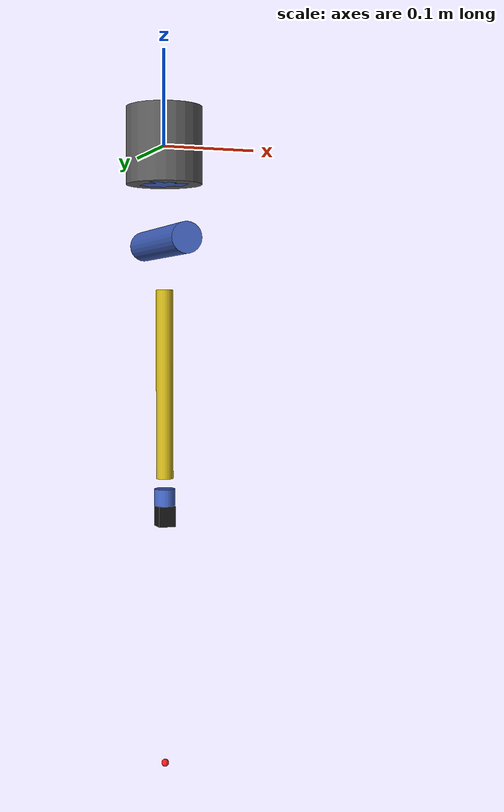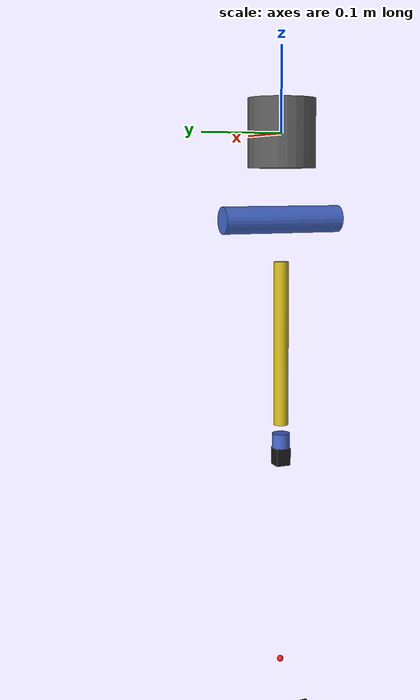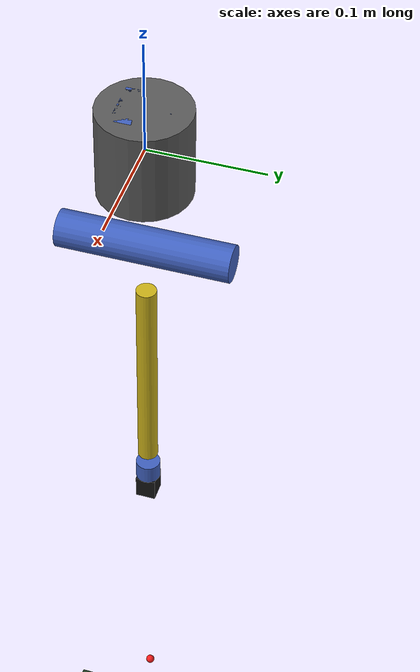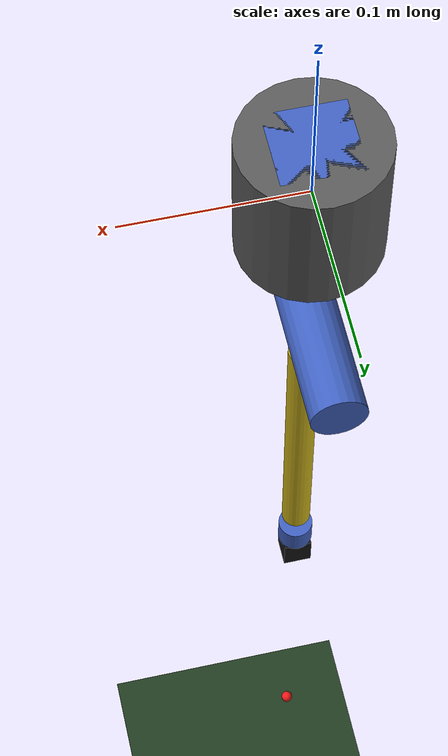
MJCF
ecm_base (fixed ceiling mount)
           --> outer_yaw_link   [hinge, Z-axis,  +-70 deg]
           --> outer_pitch_link [hinge, X-axis,  +-30 deg]
           --> insertion_link   [slide, -Z-axis,  0-24 cm]
           --> outer_roll_link  [hinge, Z-axis,  +-180 deg]
           --> camera_body      [fixed, camera site]

  Camera:
    - Name: endoscope_cam
    - Mounted at the tip of the insertion tube
    - Looks in local -Z direction (downward at default pose)
    - FOV 53.8 deg vertical -- matches MICCAI EndoVis calibration
      (fy=1035px, height=1024px -> fovy = 2*atan(512/1035) = 53.8 deg)

  Mocap body:
    - Name: instrument_tip
    - Kinematically driven by MuJoCoECMEnv each step
    - Represents the moving surgical instrument tip

  Actuators (velocity control):
    - ctrl[i] = target joint velocity in physical units
    - Scaled from [-1, 1] agent actions in the Python environment
-->

<mujoco model="ecm">

  <option timestep="0.005" integrator="RK4"/>

  <asset>
    <texture name="grid" type="2d" builtin="checker" width="512" height="512"
             rgb1="0.1 0.2 0.1" rgb2="0.15 0.25 0.15"/>
    <material name="grid_mat" texture="grid" texrepeat="4 4" reflectance="0.1"/>
  </asset>

  <worldbody>

    <light name="overhead" pos="0 0 1" dir="0 0 -1" diffuse="0.9 0.9 0.9" specular="0.1 0.1 0.1"/>
    <light name="fill"     pos="0.5 0.5 0.5" dir="-1 -1 -1" diffuse="0.4 0.4 0.4"/>

    <!-- Tissue/scene floor plane -->
    <geom name="floor" type="plane" pos="0 0 -0.8" size="0.6 0.6 0.01"
          material="grid_mat" contype="0" conaffinity="0"/>

    <!-- ECM arm: ceiling-mounted, hangs downward                         -->
    <body name="ecm_base" pos="0 0 0">
      <geom name="base_geom" type="cylinder" size="0.04 0.04"
            rgba="0.35 0.35 0.35 1" mass="2.0"/>

      <!-- Joint 1: outer yaw (rotation around world Z) -->
      <body name="outer_yaw_link" pos="0 0 0">
        <joint name="outer_yaw" type="hinge" axis="0 0 1"
               range="-1.22 1.22" damping="0.5" armature="0.01"/>
        <geom name="yaw_geom" type="box" size="0.022 0.022 0.04"
              rgba="0.25 0.38 0.75 1" mass="0.4"/>

        <!-- Joint 2: outer pitch (rotation around local X) -->
        <body name="outer_pitch_link" pos="0 0 -0.1">
          <joint name="outer_pitch" type="hinge" axis="1 0 0"
                 range="-0.52 0.52" damping="0.3" armature="0.01"/>
          <geom name="pitch_geom" type="cylinder" size="0.016 0.075"
                euler="90 0 0" rgba="0.25 0.38 0.75 1" mass="0.3"/>

          <!-- Joint 3: insertion translation (prismatic, extends in -Z) -->
          <body name="insertion_link" pos="0 0 -0.15">
            <joint name="insertion" type="slide" axis="0 0 -1"
                   range="0 0.24" damping="0.1" armature="0.001"/>
            <geom name="insertion_geom" type="cylinder" size="0.009 0.10"
                  rgba="0.80 0.70 0.10 1" mass="0.15"/>

            <!-- Joint 4: outer roll (rotation around local Z) -->
            <body name="outer_roll_link" pos="0 0 -0.12">
              <joint name="outer_roll" type="hinge" axis="0 0 1"
                     range="-3.14 3.14" damping="0.08" armature="0.001"/>
              <geom name="roll_geom" type="cylinder" size="0.011 0.009"
                    rgba="0.25 0.38 0.75 1" mass="0.05"/>

              <!-- Camera body at tip of insertion tube -->
              <body name="camera_body" pos="0 0 -0.02">
                <geom name="cam_geom" type="box" size="0.009 0.009 0.011"
                      rgba="0.08 0.08 0.08 1" mass="0.03"/>
                <camera name="endoscope_cam" pos="0 0 0" euler="0 0 0" fovy="53.8"/>
              </body>

            </body>
          </body>
        </body>
      </body>
    </body>

    <!-- Instrument tip: kinematically driven mocap body                  -->
    <!-- Moved each RL step via data.mocap_pos[0] in MuJoCoECMEnv        -->
    <!-- Initial position: 15 cm below default camera position            -->
    <body name="instrument_tip" mocap="true" pos="0 0 -0.66">
      <geom name="tip_geom" type="sphere" size="0.004" rgba="0.95 0.1 0.1 0.9"
            contype="0" conaffinity="0"/>
    </body>

  </worldbody>

  <!-- Velocity actuators                                                   -->
  <!--   ctrl[i] = target joint velocity in physical units                 -->
  <!--   kv      = velocity feedback gain (force = kv*(ctrl - qvel))      -->
  <!--   ctrlrange clips ctrl to physical velocity limits                  -->
  <actuator>
    <velocity name="act_outer_yaw"   joint="outer_yaw"   kv="5" ctrlrange="-0.5  0.5"/>
    <velocity name="act_outer_pitch" joint="outer_pitch"  kv="5" ctrlrange="-0.3  0.3"/>
    <velocity name="act_insertion"   joint="insertion"    kv="2" ctrlrange="-0.05 0.05"/>
    <velocity name="act_outer_roll"  joint="outer_roll"   kv="5" ctrlrange="-1.0  1.0"/>
  </actuator>

</mujoco>
